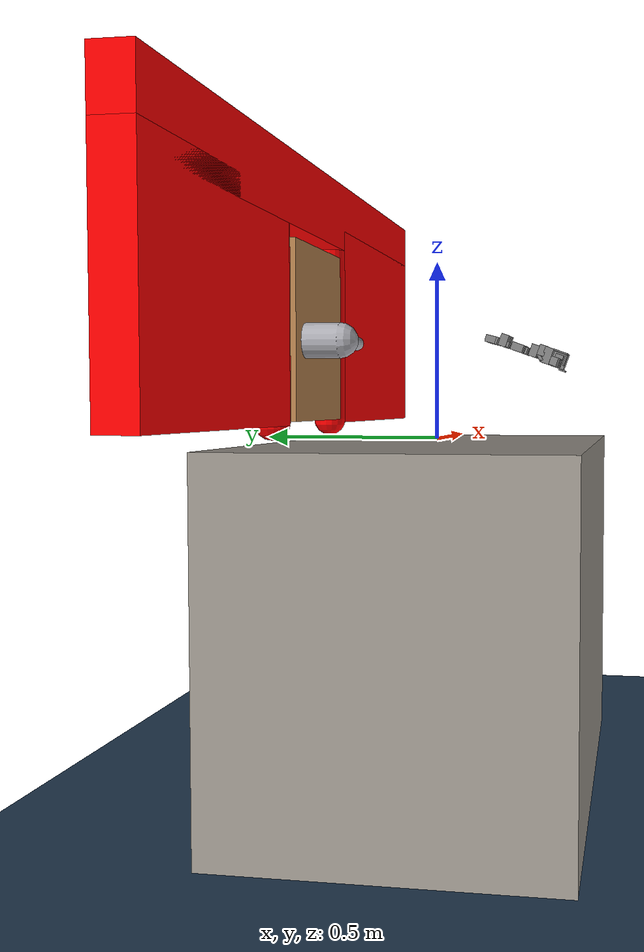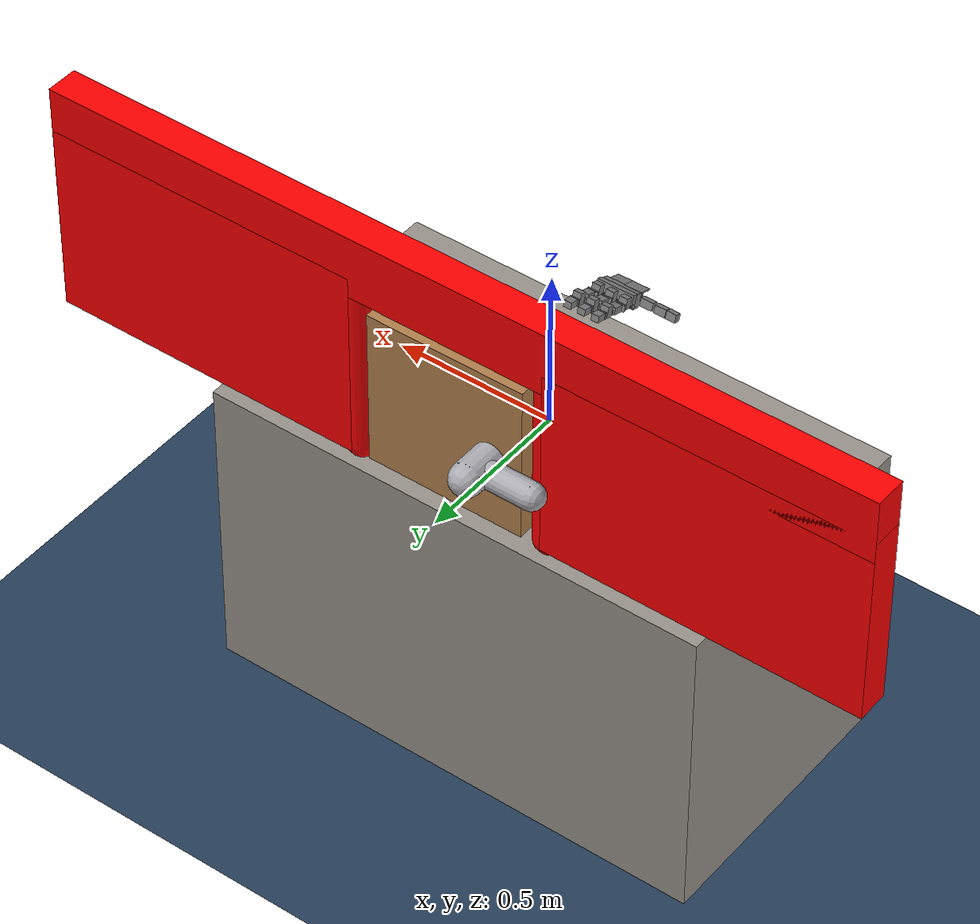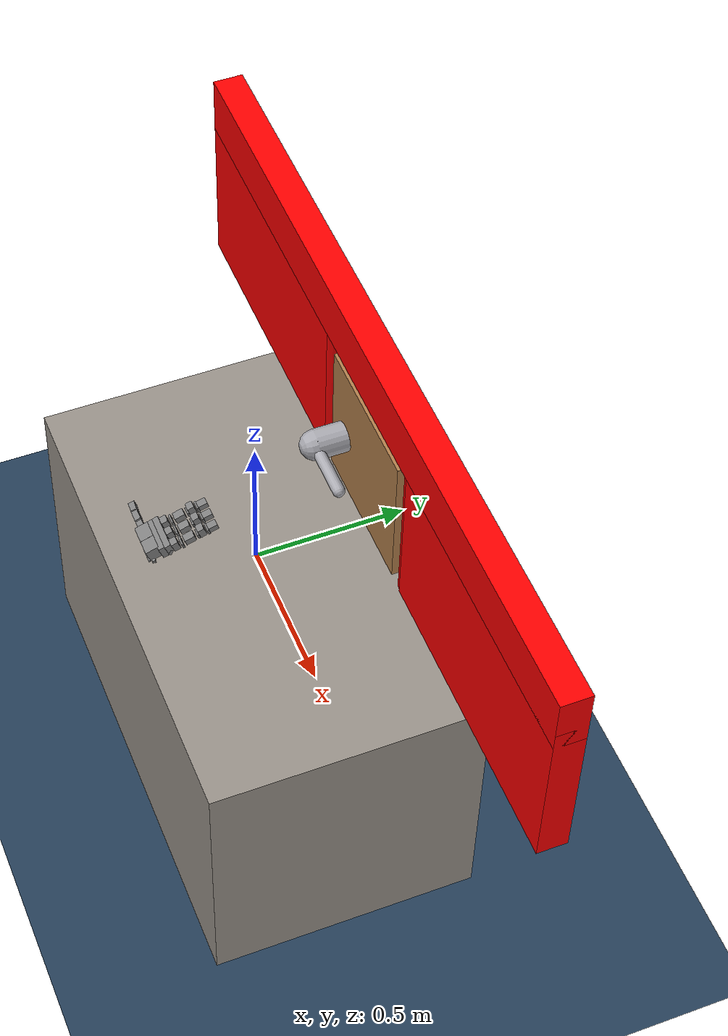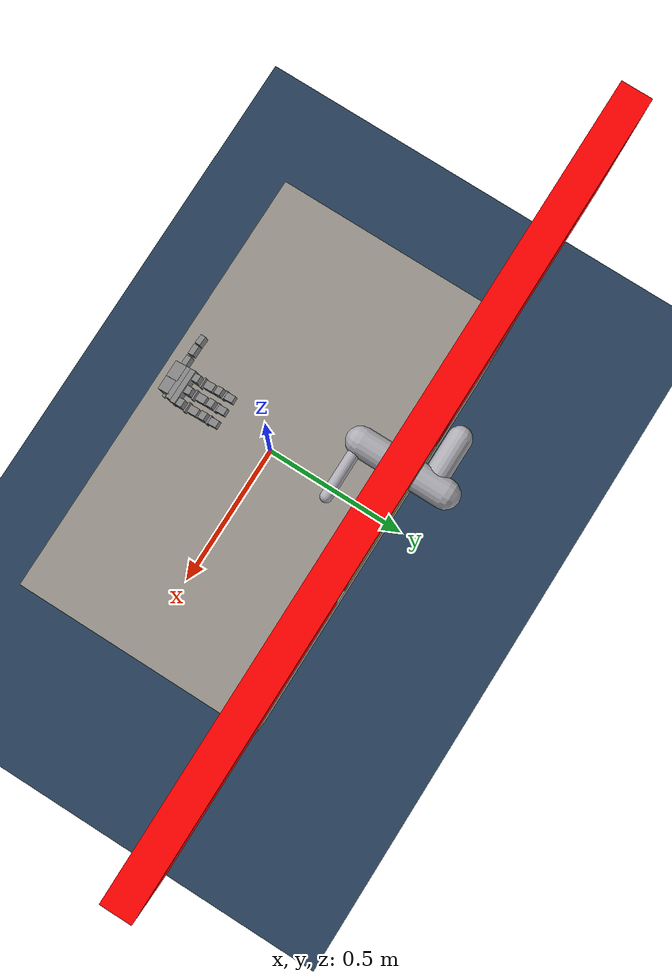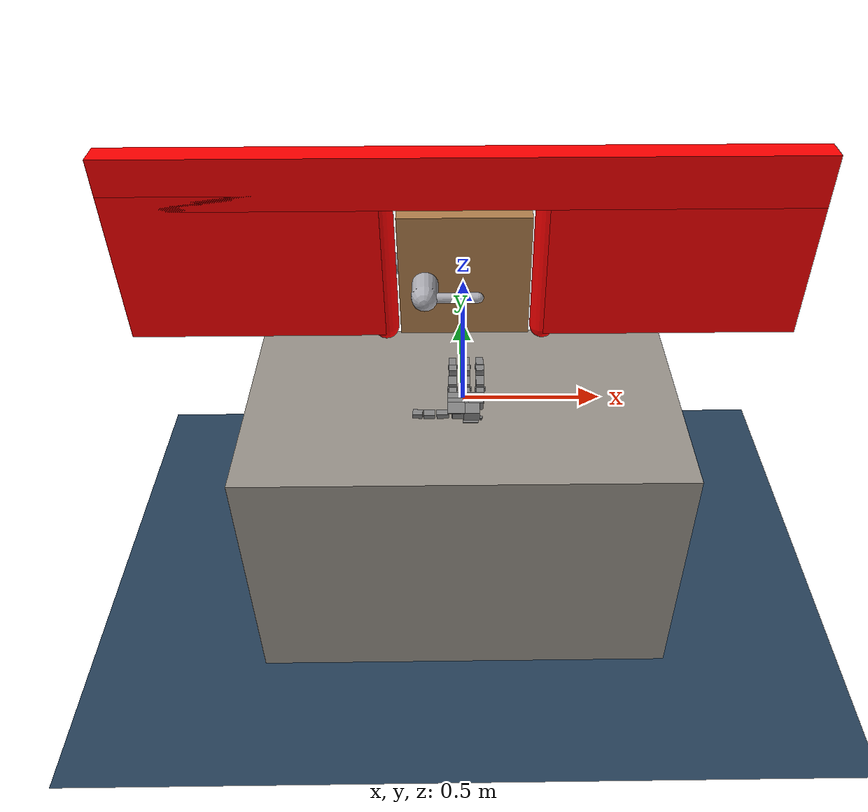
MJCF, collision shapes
<mujoco model='Door-Open-Environment'>

    <!-- ======= COMPILER & OPTIONS ======= -->
    <compiler angle="radian" meshdir='.' />
    <option timestep="0.01" integrator="Euler" iterations="5" ls_iterations="8">
      <flag eulerdamp="enable"/>
    </option>

    <custom>
      <numeric data="100" name="max_contact_points"/>
      <numeric data="50" name="max_geom_pairs"/>
    </custom>

    <!-- Bring in Leap Hand assets/defaults and contacts -->
    <include file="leap_rh_assets_defaults.xml"/>

    <!-- ======= VISUAL SETTINGS ======= -->
    <visual>
        <global offwidth="3024" offheight="1680" />
        <quality shadowsize="4096" offsamples="8" />
        <map force="0.1" fogend="5" />
    </visual>

    <!-- ======= DEFAULTS ======= -->
    <default class="main">
        <mesh scale="0.001 0.001 0.001" />
        <joint limited="true" margin="0.01" armature="0.001" damping="0.05" frictionloss="0.001" />
        <geom friction="1 0.5 0.01" margin="0.0005" />
        <site size="0.005 0 0" rgba="0.4 0.9 0.4 1" />
        <tendon limited="true" />
        <general ctrllimited="true" ctrlrange="-1 1" user="0 1 0.03 0.0939711 0.513477 0.0358776 1.23598 8.40409 0.485031 6.04244 1.02187 0.175297 0.121642 0 0 0" />
    </default>

    <!-- ======= ASSETS ======= -->
    <asset>
        <!-- Textures -->
        <texture type="cube" name="texgeom" builtin="flat" mark="cross" rgb1="0.3 0.6 0.5" rgb2="0.3 0.6 0.5" width="127" height="762" />
        <texture type="cube" name="wood" file="resources/textures/wood.png" />
        <texture type="2d" name="wood2d" file="resources/textures/wood.png" />
        <texture type="cube" name="square" file="resources/textures/square.png" />
        <texture type="cube" name="foil" file="resources/textures/silverRaw.png" />
        <texture type="cube" name="woodb" file="resources/textures/woodb.png" />
        <texture type="2d" name="groundplane" builtin="checker" rgb1="0.2 0.3 0.4" rgb2="0.1 0.2 0.3" width="100" height="100" />
        <texture type="2d" name="marble2d" file="resources/textures/marble.png" />
        <texture type="cube" name="marblecube" file="resources/textures/marble.png" />

        <!-- Materials -->
        <material name="MatColl" specular="1" shininess="0.3" reflectance="0.5" rgba="0.4 0.5 0.6 1" />
        <material name="MatViz" specular="0.75" shininess="0.1" reflectance="0.5" rgba="0.9 0.7 0.5 1" />
        <material name="MatGnd" specular="0.3" shininess="0.3" reflectance="0.3" rgba="0.5 0.55 0.5 1" />
        <material name="object" texture="texgeom" />
        <material name="groundplane" texture="groundplane" texrepeat="10 10" />
        <material name="table2d" texture="marble2d" reflectance="0.3" rgba="0.8 0.8 0.8 1" />
        <material name="tablecube" texture="marblecube" rgba="0.8 0.8 0.8 1" />
        <material name="MatFoil" texture="foil" specular="1" shininess="0.3" rgba="0.9 0.9 0.9 1" />
        <material name="MatPlane" specular="0.3" shininess="0.3" rgba="0.3 0.3 0.2 1" />
        <material name="MatWood" texture="wood" texrepeat="3 3" specular="0.4" shininess="0.1" />
        <material name="MatSquare" texture="square" specular="1" shininess="0.6" rgba="0.8 0.8 0.8 1" />
        <material name="MatWoodR" texture="wood" specular="1" shininess="0.3" rgba="1 0.5 0.5 1" />
        <material name="MatWoodG" texture="wood" specular="1" shininess="0.3" rgba="0.2 1 0.2 1" />
        <material name="MatWoodB" texture="woodb" specular="1" shininess="0.3" />
    </asset>

    <!-- ======= WORLD ======= -->
    <worldbody>
        <!-- Lighting -->
        <light directional='false' diffuse='.7 .7 .7' specular='0.03 0.03 0.03' pos='-1 -1.0 4.0' dir='1 1.0 -4'/>

        <!-- Ground -->
        <geom name='ground' size="1.5 1.5 0.25" pos="0 0 -1" type="plane" contype="1" conaffinity="0" material="groundplane" />

        <!-- Cameras -->
        <camera name="fixed" pos="0 -0.7 0.7" quat="0.92388 0.382683 0 0" />
        <camera name="vil_camera" pos="0 -1.2 1.2" quat="0.92388 0.382683 0 0" />
        <camera name="hand_close" pos="0.1 -0.4 0.35" quat="0.92388 0.382683 0 0" />

        <!-- ======= LEAP HAND BASE (floating) ======= -->
        <body name="hand_base" pos="0 -0.4 0.2" euler="3.14 0 -1.57">
            <joint name="H_Tx" pos="0 0 0" axis="1 0 0" type="slide" range="-0.4 0.9" damping="50" armature="0.1"/>
            <joint name="H_Ty" pos="0 0 0" axis="0 1 0" type="slide" range="-0.25 0.25" damping="50" armature="0.1"/>
            <joint name="H_Rx" pos="0 0 0" axis="1 0 0" range="-2 2" damping="50" armature="0.1"/>
            <joint name="H_Ry" pos="0 0 0" axis="0 1 0" range="-2 2" damping="50" armature="0.1"/>
            <joint name="H_Rz" pos="0 0 0" axis="0 0 1" range="-2 2" damping="50" armature="0.1"/>
            <!-- include the hand kinematic subtree -->
            <include file="leap_rh_body_include.xml"/>
        </body>

        <!-- ======= TABLE (Marble Block) ======= -->
        <body name="table">
            <geom size="0.80 0.45 0.494" pos="0 0 -0.506" type="box" material="tablecube" />
        </body>

        <!-- ======= DOOR FRAME ======= -->
        <body name="frame" pos="-0.28 0.4 0.3" user="1001 0 2002 -0.4 -0.1 0.252 0 0.3 0.45">
            <inertial pos="0.29 0 0" quat="0.5 0.5 0.5 0.5" mass="7.85398" diaginertia="0.923301 0.764585 0.168533" />
            <!-- Left wall -->
            <geom size="0.50 0.05 0.30" pos="-0.52 0 0.04" type="box" material="MatWoodB" rgba="1 0 0 1" />
            <!-- Left wall capsule -->
            <geom size="0.05 0.3" pos="-0.02 0 0.05" type="capsule" material="MatWoodB" rgba="1 0 0 1" />
            <!-- Right wall capsule -->
            <geom size="0.05 0.3" pos="0.6 0 0.05" type="capsule" material="MatWoodB" rgba="1 0 0 1" />
            <!-- Right wall -->
            <geom size="0.50 0.05 0.30" pos="1.1 0 0.04" type="box" material="MatWoodB" rgba="1 0 0 1" />
            <!-- Top wall -->
            <geom size="1.31 0.05 0.10" pos="0.29 0 0.38" type="box" material="MatWoodB" rgba="1 0 0 1" />
            <site name="S_handle_target" pos="0.75 -0.5 -.18" size="0.025" group='3'/>

            <!-- ======= DOOR ======= -->
            <body name="door" pos="0.29 0 0">
                <inertial pos="0.0296816 -0.00152345 0" quat="0.701072 0 0 0.713091" mass="2.43455" diaginertia="0.0913751 0.0521615 0.043714" />
                <joint name="door_hinge" pos="0.31 0 0" axis="0 0 1" range="0 1.57" damping="1" frictionloss="2" />
                <geom size="0.25 0.05 0.25" type="box" friction="1 1 1" material="MatWood" contype="1" conaffinity="1" />

                <!-- ======= LATCH ======= -->
                <body name="latch" pos="-0.15 0 -0.025">
                    <inertial pos="-0.017762 0.0138544 0" quat="0.365653 0.605347 -0.36522 0.605365" mass="3.53743" diaginertia="0.0483771 0.0410001 0.0111013" />
                    <joint name="latch" pos="0 0 0" axis="0 1 0" range="0 1.8" frictionloss="5" />
                    <geom size="0.05 0.15" quat="0.707388 0.706825 0 0" type="capsule" material="MatFoil" />
                    <geom size="0.02 0.1" pos="0.1 -0.15 0" quat="0.707388 0 0.706825 0" type="capsule" material="MatFoil" />
                    <geom size="0.04 0.07" pos="-0.1 0.1 0" quat="0.707388 0 0.706825 0" type="capsule" material="MatFoil" />
                    <site name="S_handle" pos="0.15 -0.15 0" size="0.025" group='3'/>
                </body>
            </body>
        </body>

    </worldbody>

    <!-- Bring in Leap Hand actuators -->
    <include file="leap_rh_actuators_include.xml"/>

</mujoco>

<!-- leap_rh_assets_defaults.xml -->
<mujocoinclude>
  <asset>
    <material name="black" rgba="0.2 0.2 0.2 1"/>
    <material name="gray" rgba="0.5 0.5 0.5 1"/>
    <mesh name="leap_mount" file="meshes/leap_mount.obj" scale="1 1 1"/>
    <!-- Files are resolved relative to meshdir set by the scene -->
    <mesh name="palm" file="../../../../external_deps/mujoco_menagerie/leap_hand/assets/palm_right.obj" scale="1 1 1"/>
    <mesh name="base" file="../../../../external_deps/mujoco_menagerie/leap_hand/assets/base.obj" scale="1 1 1"/>
    <mesh name="proximal" file="../../../../external_deps/mujoco_menagerie/leap_hand/assets/proximal.obj" scale="1 1 1"/>
    <mesh name="medial" file="../../../../external_deps/mujoco_menagerie/leap_hand/assets/medial.obj" scale="1 1 1"/>
    <mesh name="distal" file="../../../../external_deps/mujoco_menagerie/leap_hand/assets/distal.obj" scale="1 1 1"/>
    <mesh name="tip" file="../../../../external_deps/mujoco_menagerie/leap_hand/assets/tip.obj" scale="1 1 1"/>
    <mesh name="thumb_base" file="../../../../external_deps/mujoco_menagerie/leap_hand/assets/thumb_base.obj" scale="1 1 1"/>
    <mesh name="thumb_proximal" file="../../../../external_deps/mujoco_menagerie/leap_hand/assets/thumb_proximal.obj" scale="1 1 1"/>
    <mesh name="thumb_distal" file="../../../../external_deps/mujoco_menagerie/leap_hand/assets/thumb_distal.obj" scale="1 1 1"/>
    <mesh name="thumb_tip" file="../../../../external_deps/mujoco_menagerie/leap_hand/assets/thumb_tip.obj" scale="1 1 1"/>
  </asset>

  <default>
    <default class="leap_rh">
      <geom group="3" friction="0.2" solref="0.02 1.5" solimp="0.9 0.99 0.001"/>
      <default class="visual">
        <geom group="0" type="mesh" contype="0" conaffinity="0" density="0" material="black"/>
      </default>
      <default class="tip">
        <geom size="0.01 0.012 0.016" pos="-0.0012969 -0.0335524 0.0145207" quat="0.703552 0.709596 -0.0292107 -0.0252203" type="box" friction="0.7 0.05 0.0002" rgba=".5 .5 .5 .3"/>
      </default>
      <default class="thumb_tip">
        <geom size="0.01 0.012 0.016" pos="-0.00127744 -0.0455619 -0.0144774" quat="0.708101 0.705072 -0.0294902 -0.024426" type="box" friction="0.7 0.05 0.0002" rgba=".5 .5 .5 .3"/>
      </default>
      <position kp="3.0" inheritrange="1"/>
      <joint axis="0 0 -1" damping="0.2" armature="0.00149376" actuatorfrcrange="-0.2196 0.2196" frictionloss="0.02"/>
      <default class="mcp">
        <joint range="-0.314 2.23"/>
      </default>
      <default class="rot">
        <joint range="-1.047 1.047"/>
      </default>
      <default class="pip">
        <joint range="-0.506 1.885"/>
      </default>
      <default class="dip">
        <joint range="-0.366 2.042"/>
      </default>
      <default class="thumb_cmc">
        <joint range="-0.349 2.094"/>
      </default>
      <default class="thumb_axl">
        <joint range="-0.349 2.094"/>
      </default>
      <default class="thumb_mcp">
        <joint range="-0.47 2.443"/>
      </default>
      <default class="thumb_ipl">
        <joint range="-1.34 1.88"/>
      </default>
    </default>
  </default>

  <contact>
    <!-- filter the palm from all other finger bodies except the tips -->
    <exclude body1="palm" body2="if_bs"/>
    <exclude body1="palm" body2="mf_bs"/>
    <exclude body1="palm" body2="rf_bs"/>
    <exclude body1="palm" body2="th_mp"/>

    <exclude body1="palm" body2="if_px"/>
    <exclude body1="palm" body2="mf_px"/>
    <exclude body1="palm" body2="rf_px"/>
    <exclude body1="palm" body2="th_bs"/>

    <exclude body1="palm" body2="if_md"/>
    <exclude body1="palm" body2="mf_md"/>
    <exclude body1="palm" body2="rf_md"/>
    <exclude body1="palm" body2="th_px"/>

    <!-- filter the mount from all finger bodies except the tips -->
    <exclude body1="leap_mount" body2="if_bs"/>
    <exclude body1="leap_mount" body2="mf_bs"/>
    <exclude body1="leap_mount" body2="rf_bs"/>
    <exclude body1="leap_mount" body2="th_mp"/>

    <exclude body1="leap_mount" body2="if_px"/>
    <exclude body1="leap_mount" body2="mf_px"/>
    <exclude body1="leap_mount" body2="rf_px"/>
    <exclude body1="leap_mount" body2="th_bs"/>

    <exclude body1="leap_mount" body2="if_md"/>
    <exclude body1="leap_mount" body2="mf_md"/>
    <exclude body1="leap_mount" body2="rf_md"/>
    <exclude body1="leap_mount" body2="th_px"/>

    <!-- none of the base fingertip geoms can touch each other -->
    <exclude body1="if_bs" body2="mf_bs"/>
    <exclude body1="if_bs" body2="rf_bs"/>
    <exclude body1="mf_bs" body2="rf_bs"/>

    <exclude body1="th_mp" body2="if_bs"/>
    <exclude body1="th_mp" body2="mf_bs"/>
    <exclude body1="th_mp" body2="rf_bs"/>
  </contact>
</mujocoinclude>

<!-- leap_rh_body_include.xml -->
<mujocoinclude>
  <body name="leap_mount" pos="0 0 0" quat="1 0 0 0" childclass="leap_rh">
    <geom name="leap_mount_visual" pos="0 0 0" quat="1 0 0 0" class="visual" mesh="leap_mount"/>
    <geom name="leap_mount_collision_0" size="0.002 0.025 0.005" pos="0.0405 0.02 0.009" quat="0.57346234 0 0.81923192 0" type="box"/>
    <geom name="leap_mount_collision_1" size="0.005 0.005 0.005" pos="0.05 0.053 0.002" quat="0.4987168 0.64994038 -0.34910175 0.45495826" type="box"/>
    <site name="grasp_site" pos="0.11 0.0 0.03" group="4"/>
    <site name="palm_site" pos="0.11 0.0 0.0" group="4"/>
    <body name="palm" pos="0.124 -0.0305 -0.06045" quat="0 1 0 -0.175">
      <inertial pos="-0.049542 -0.042914 -0.010227" quat="0.565586 0.427629 -0.574956 0.408254" mass="0.237" diaginertia="0.000407345 0.000304759 0.000180736"/>
      <geom name="palm_visual" pos="-0.02 0.02575 -0.0347" quat="1 0 0 0" class="visual" mesh="palm"/>
      <geom name="palm_collision_1" size="0.011 0.013 0.017" pos="-0.009 0.008 -0.011" type="box"/>
      <geom name="palm_collision_2" size="0.011 0.013 0.017" pos="-0.009 -0.037 -0.011" type="box"/>
      <geom name="palm_collision_3" size="0.011 0.013 0.017" pos="-0.009 -0.082 -0.011" type="box"/>
      <geom name="palm_collision_4" size="0.012 0.058 0.023" pos="-0.048 -0.033 -0.0115" type="box"/>
      <geom name="palm_collision_5" size="0.01 0.06 0.015" pos="-0.03 -0.035 -0.003" type="box"/>
      <geom name="palm_collision_6" size="0.005 0.06 0.01" pos="-0.032 -0.035 -0.024" quat="0.923956 0 0.382499 0" type="box"/>
      <geom name="palm_collision_7" size="0.012 0.058 0.023" pos="-0.048 -0.033 -0.0115" type="box"/>
      <geom name="palm_collision_8" size="0.022 0.026 0.023" pos="-0.078 -0.053 -0.0115" type="box"/>
      <geom name="palm_collision_9" size="0.002 0.018 0.017" pos="-0.098 -0.009 -0.006" type="box"/>
      <geom name="palm_collision_10" size="0.022 0.028 0.002" pos="-0.078 -0.003 0.01" type="box"/>
      <!-- Index finger -->
      <body name="if_bs" pos="-0.007 0.023 -0.0187" quat="0.5 0.5 0.5 -0.5">
        <inertial pos="-0.022516 0.033882 0.016359" quat="0.388092 0.677951 -0.247713 0.573067" mass="0.044" diaginertia="1.74972e-05 1.61504e-05 7.21342e-06"/>
        <joint name="if_mcp" class="mcp"/>
        <geom name="if_bs_visual" pos="0.0084 0.0077 0.01465" quat="1 0 0 0" class="visual" mesh="base"/>
        <geom name="if_bs_collision_1" size="0.01 0.003 0.017" pos="0 0.018 0.0147" type="box"/>
        <body name="if_px" pos="-0.0122 0.0381 0.0145" quat="0.500003 -0.5 -0.499997 0.5">
          <inertial pos="0.0075 -0.0002 -0.011" quat="0 0.707107 0 0.707107" mass="0.032" diaginertia="4.8853e-06 4.3733e-06 3.0933e-06"/>
          <joint name="if_rot" class="rot"/>
          <geom name="if_px_visual" pos="0.0096 0.0002 0.0007" quat="0.500003 -0.5 -0.5 -0.499997" class="visual" mesh="proximal"/>
          <geom name="if_px_collision" size="0.017 0.013 0.011" pos="0.0075 -0.0002 -0.011" type="box"/>
          <body name="if_md" pos="0.015 0.0143 -0.013" quat="0.500003 0.5 -0.5 0.499997">
            <inertial pos="0.0054215 -0.029148 0.015" quat="0.687228 0.687228 0.166487 0.166487" mass="0.037" diaginertia="8.28004e-06 8.1598e-06 5.39516e-06"/>
            <joint name="if_pip" class="pip"/>
            <geom name="if_md_visual" pos="0.0211 -0.0084 0.0097" quat="2.67949e-08 -1 0 0" class="visual" mesh="medial"/>
            <geom name="if_md_collision_1" size="0.008 0.003 0.013" pos="0 -0.02 0.015" type="box"/>
            <geom name="if_md_collision_5" size="0.017 0.011 0.013" pos="0.0075 -0.035 0.015" type="box"/>
            <body name="if_ds" pos="0 -0.0361 0.0002">
              <inertial pos="-0.0008794 -0.027019 0.014594" quat="0.702905 0.710643 -0.0212937 -0.0214203" mass="0.016" diaginertia="3.71863e-06 3.02396e-06 1.6518e-06"/>
              <joint name="if_dip" class="dip"/>
              <geom name="if_ds_visual" pos="0.0132 -0.0061 0.0144" quat="2.67949e-08 1 0 0" class="visual" mesh="distal"/>
              <geom name="if_ds_collision_1" size="0.01 0.003 0.015" pos="0 -0.017 0.015" type="box"/>
              <geom name="if_tip" class="tip"/>
              <geom type="mesh" mesh="tip" class="visual" material="gray"/>
              <site name="if_tip" pos="0 -0.05 0.015" group="4"/>
            </body>
          </body>
        </body>
      </body>
      <!-- Middle finger -->
      <body name="mf_bs" pos="-0.0071 -0.0224 -0.0187" quat="0.500003 0.5 0.5 -0.499997">
        <inertial pos="-0.022516 0.033882 0.016359" quat="0.388092 0.677951 -0.247713 0.573067" mass="0.044" diaginertia="1.74972e-05 1.61504e-05 7.21342e-06"/>
        <joint name="mf_mcp" class="mcp"/>
        <geom name="mf_bs_visual" pos="0.0084 0.0077 0.01465" quat="1 0 0 0" class="visual" mesh="base"/>
        <geom name="mf_bs_collision_1" size="0.01 0.003 0.017" pos="0 0.018 0.0147" type="box"/>
        <body name="mf_px" pos="-0.0122 0.0381 0.0145" quat="0.500003 -0.5 -0.499997 0.5">
          <inertial pos="0.0075 -0.0002 -0.011" quat="0 0.707107 0 0.707107" mass="0.032" diaginertia="4.8853e-06 4.3733e-06 3.0933e-06"/>
          <joint name="mf_rot" class="rot"/>
          <geom name="mf_px_visual" pos="0.0096 0.0003 0.0007" quat="0.500003 -0.5 -0.5 -0.499997" class="visual" mesh="proximal"/>
          <geom name="mf_px_collision" size="0.017 0.013 0.011" pos="0.0075 -0.0002 -0.011" type="box"/>
          <body name="mf_md" pos="0.015 0.0143 -0.013" quat="0.500003 0.5 -0.5 0.499997">
            <inertial pos="0.0054215 -0.029148 0.015" quat="0.687228 0.687228 0.166487 0.166487" mass="0.037" diaginertia="8.28004e-06 8.1598e-06 5.39516e-06"/>
            <joint name="mf_pip" class="pip"/>
            <geom name="mf_md_visual" pos="0.0211 -0.0084 0.0097" quat="1.32679e-06 -1 0 0" class="visual" mesh="medial"/>
            <geom name="mf_md_collision_1" size="0.008 0.003 0.013" pos="0 -0.02 0.015" type="box"/>
            <geom name="mf_md_collision_5" size="0.017 0.011 0.013" pos="0.0075 -0.035 0.015" type="box"/>
            <body name="mf_ds" pos="0 -0.0361 0.0002">
              <inertial pos="-0.0008794 -0.027019 0.014594" quat="0.702905 0.710643 -0.0212937 -0.0214203" mass="0.016" diaginertia="3.71863e-06 3.02396e-06 1.6518e-06"/>
              <joint name="mf_dip" class="dip"/>
              <geom name="mf_ds_visual" pos="0.0132 -0.0061 0.0145" quat="1.32679e-06 1 0 0" class="visual" mesh="distal"/>
              <geom name="mf_ds_collision_1" size="0.01 0.003 0.015" pos="0 -0.017 0.015" type="box"/>
              <geom name="mf_tip" class="tip"/>
              <geom type="mesh" mesh="tip" class="visual" material="gray"/>
              <site name="mf_tip" pos="0 -0.05 0.015" group="4"/>
            </body>
          </body>
        </body>
      </body>
      <!-- Ring finger -->
      <body name="rf_bs" pos="-0.00709 -0.0678 -0.0187" quat="0.500003 0.5 0.5 -0.499997">
        <inertial pos="-0.022516 0.033882 0.016359" quat="0.388092 0.677951 -0.247713 0.573067" mass="0.044" diaginertia="1.74972e-05 1.61504e-05 7.21342e-06"/>
        <joint name="rf_mcp" class="mcp"/>
        <geom name="rf_bs_visual" pos="0.0084 0.0077 0.01465" quat="1 0 0 0" class="visual" mesh="base"/>
        <geom name="rf_bs_collision_1" size="0.01 0.003 0.017" pos="0 0.018 0.0147" type="box"/>
        <body name="rf_px" pos="-0.0122 0.0381 0.0145" quat="0.500003 -0.5 -0.499997 0.5">
          <inertial pos="0.0075 -0.0002 -0.011" quat="0 0.707107 0 0.707107" mass="0.032" diaginertia="4.8853e-06 4.3733e-06 3.0933e-06"/>
          <joint name="rf_rot" class="rot"/>
          <geom name="rf_px_visual" pos="0.0096 0.0003 0.0007" quat="0.500003 -0.5 -0.5 -0.499997" class="visual" mesh="proximal"/>
          <geom name="rf_px_collision" size="0.017 0.013 0.011" pos="0.0075 -0.0002 -0.011" type="box"/>
          <body name="rf_md" pos="0.015 0.0143 -0.013" quat="0.500003 0.5 -0.5 0.499997">
            <inertial pos="0.0054215 -0.029148 0.015" quat="0.687228 0.687228 0.166487 0.166487" mass="0.037" diaginertia="8.28004e-06 8.1598e-06 5.39516e-06"/>
            <joint name="rf_pip" class="pip"/>
            <geom name="rf_md_visual" pos="0.0211 -0.0084 0.0097" quat="0 -1 0 0" class="visual" mesh="medial"/>
            <geom name="rf_md_collision_1" size="0.008 0.003 0.013" pos="0 -0.02 0.015" type="box"/>
            <geom name="rf_md_collision_5" size="0.017 0.011 0.013" pos="0.0075 -0.035 0.015" type="box"/>
            <body name="rf_ds" pos="0 -0.03609 0.0002">
              <inertial pos="-0.0008794 -0.027019 0.014594" quat="0.702905 0.710643 -0.0212937 -0.0214203" mass="0.016" diaginertia="3.71863e-06 3.02396e-06 1.6518e-06"/>
              <joint name="rf_dip" class="dip"/>
              <geom name="rf_ds_visual" pos="0.0132 -0.0061 0.0145" quat="0 1 0 0" class="visual" mesh="distal"/>
              <geom name="rf_ds_collision_1" size="0.01 0.003 0.015" pos="0 -0.017 0.015" type="box"/>
              <geom name="rf_tip" class="tip"/>
              <geom type="mesh" mesh="tip" class="visual" material="gray"/>
              <site name="rf_tip" pos="0 -0.05 0.015" group="4"/>
            </body>
          </body>
        </body>
      </body>
      <!-- Thumb -->
      <body name="th_mp" pos="-0.0693 -0.0012 -0.0216" quat="0.707109 0 0.707105 0">
        <inertial pos="0.0075 -0.0002 -0.011" quat="0 0.707107 0 0.707107" mass="0.032" diaginertia="4.8853e-06 4.3733e-06 3.0933e-06"/>
        <joint name="th_cmc" class="thumb_cmc"/>
        <geom name="th_mp_visual" pos="-0.0053 0.0003 0.00078" quat="0.500003 -0.5 -0.5 -0.499997" class="visual" mesh="proximal"/>
        <geom name="th_mp_collision" size="0.017 0.013 0.011" pos="-0.0075 -0.0002 -0.011" type="box"/>
        <body name="th_bs" pos="0 0.0143 -0.013" quat="0.500003 0.5 -0.5 0.499997">
          <inertial pos="0 0 -0.0070806" quat="0.707107 0.707107 0 0" mass="0.003" diaginertia="6.1932e-07 5.351e-07 2.1516e-07"/>
          <joint name="th_axl" class="thumb_axl"/>
          <geom name="th_bs_collision_1" pos="0.01196 0 -0.0158" quat="0.707109 0.707105 0 0" class="visual" mesh="thumb_base"/>
          <body name="th_px" pos="0 0.0145 -0.017" quat="0.707109 -0.707105 0 0">
            <inertial pos="-0.0020593 0.015912 -0.013733" quat="0.698518 0.697382 -0.104933 0.121324" mass="0.038" diaginertia="9.87104e-06 9.32653e-06 4.36203e-06"/>
            <joint name="th_mcp" class="thumb_mcp"/>
            <geom name="th_px_visual" pos="0.0439 0.0579 -0.0086" quat="1 0 0 0" class="visual" mesh="thumb_proximal"/>
            <geom name="th_px_collision_1" size="0.01 0.02 0.012" pos="0 0.0105 -0.014" type="box"/>
            <body name="th_ds" pos="0 0.0466 0.0002" quat="1.32679e-06 0 0 1">
              <inertial pos="0.00096191 -0.024203 -0.014419" quat="0.35287 0.311272 -0.632839 0.614904" mass="0.049" diaginertia="2.08591e-05 2.0402e-05 4.71335e-06"/>
              <joint name="th_ipl" class="thumb_ipl"/>
              <geom name="th_ds_visual" pos="0.0625 0.0784 0.0489" quat="1 0 0 0" class="visual" mesh="thumb_distal"/>
              <geom name="th_ds_collision_1" size="0.01 0.018 0.012" pos="0 -0.0085 -0.015" type="box"/>
              <geom name="th_tip" class="thumb_tip"/>
              <site name="th_tip" pos="0 -0.06 -0.015" group="4"/>
              <geom type="mesh" mesh="thumb_tip" class="visual" material="gray"/>
            </body>
          </body>
        </body>
      </body>
    </body>
  </body>
</mujocoinclude>

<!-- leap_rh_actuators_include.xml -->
<mujocoinclude>
  <actuator>
    <!-- Base motion actuators similar to ADROIT forearm joints -->
    <general name="A_H_Tx" joint="H_Tx" ctrlrange="-0.4 0.9" biastype="affine" gainprm="400 0 0" biasprm="0 -200 0" />
    <general name="A_H_Ty" joint="H_Ty" ctrlrange="-0.25 0.25" biastype="affine" gainprm="400 0 0" biasprm="0 -200 0" />
    <general name="A_H_Rx" joint="H_Rx" ctrlrange="-2 2" biastype="affine" gainprm="400 0 0" biasprm="0 -200 0" />
    <general name="A_H_Ry" joint="H_Ry" ctrlrange="-2 2" biastype="affine" gainprm="400 0 0" biasprm="0 -200 0" />
    <general name="A_H_Rz" joint="H_Rz" ctrlrange="-2 2" biastype="affine" gainprm="400 0 0" biasprm="0 -200 0" />

    <position name="if_mcp_act" joint="if_mcp" class="mcp"/>
    <position name="if_rot_act" joint="if_rot" class="rot"/>
    <position name="if_pip_act" joint="if_pip" class="pip"/>
    <position name="if_dip_act" joint="if_dip" class="dip"/>

    <position name="mf_mcp_act" joint="mf_mcp" class="mcp"/>
    <position name="mf_rot_act" joint="mf_rot" class="rot"/>
    <position name="mf_pip_act" joint="mf_pip" class="pip"/>
    <position name="mf_dip_act" joint="mf_dip" class="dip"/>

    <position name="rf_mcp_act" joint="rf_mcp" class="mcp"/>
    <position name="rf_rot_act" joint="rf_rot" class="rot"/>
    <position name="rf_pip_act" joint="rf_pip" class="pip"/>
    <position name="rf_dip_act" joint="rf_dip" class="dip"/>

    <position name="th_cmc_act" joint="th_cmc" class="thumb_cmc"/>
    <position name="th_axl_act" joint="th_axl" class="thumb_axl"/>
    <position name="th_mcp_act" joint="th_mcp" class="thumb_mcp"/>
    <position name="th_ipl_act" joint="th_ipl" class="thumb_ipl"/>
  </actuator>
  <sensor>
    <!-- hand. -->
    <framepos name="palm_position" objtype="site" objname="grasp_site"/>
    <framepos name="th_tip_position" objtype="site" objname="th_tip" reftype="site" refname="grasp_site"/>
    <framepos name="if_tip_position" objtype="site" objname="if_tip" reftype="site" refname="grasp_site"/>
    <framepos name="mf_tip_position" objtype="site" objname="mf_tip" reftype="site" refname="grasp_site"/>
    <framepos name="rf_tip_position" objtype="site" objname="rf_tip" reftype="site" refname="grasp_site"/>
  </sensor>
</mujocoinclude>
